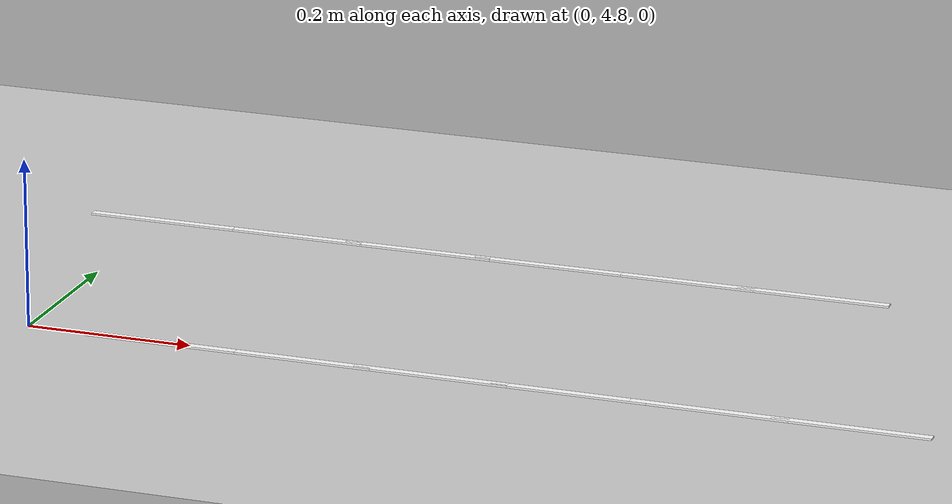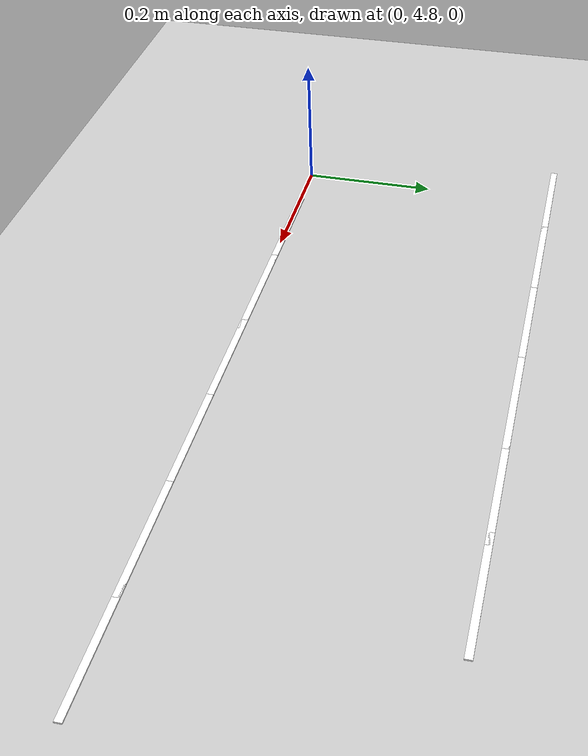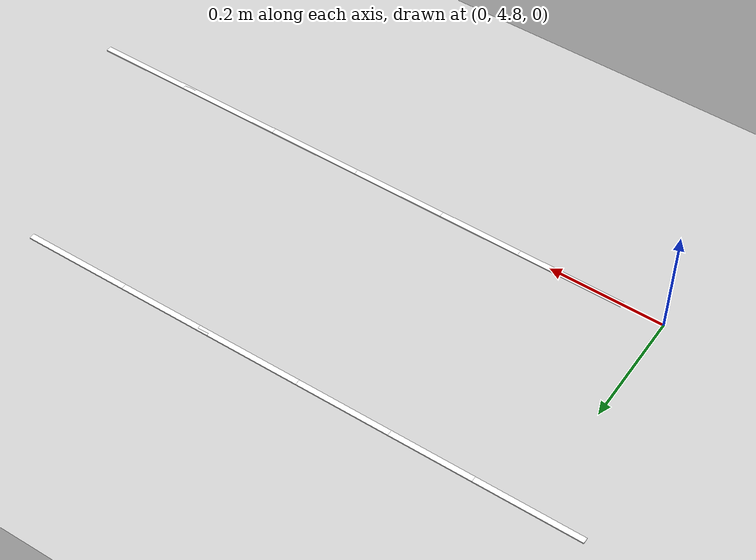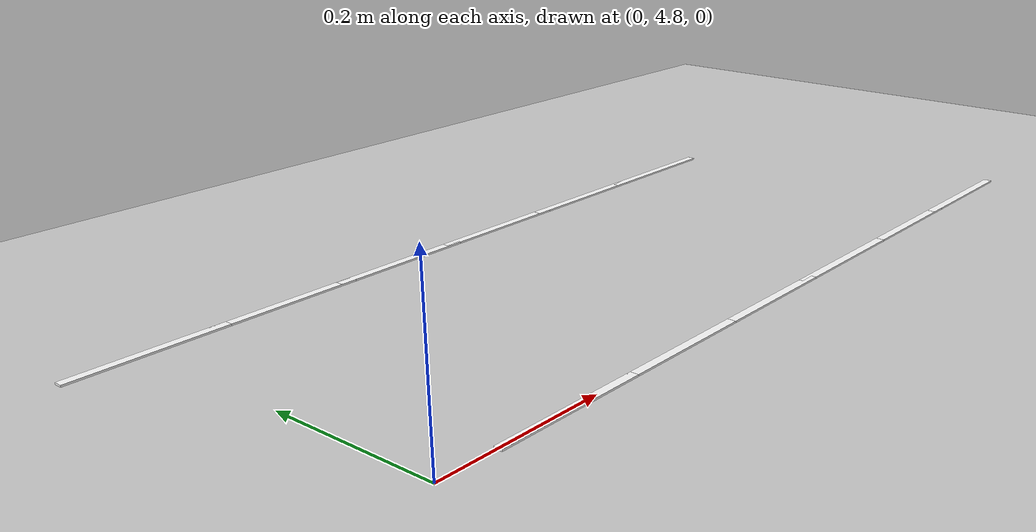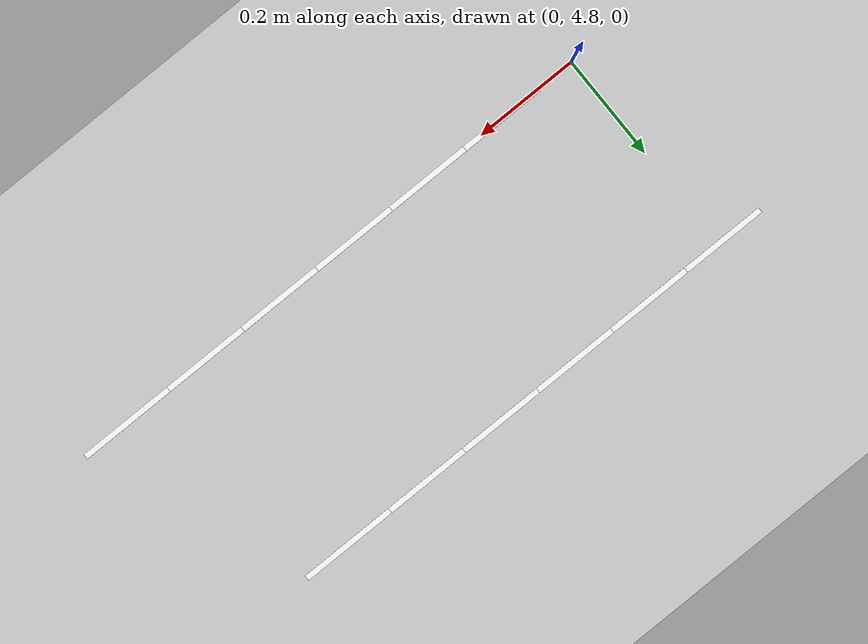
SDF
<sdf version="1.7">
 <world name="default">
  <model name="ground_plane">
   <static>1</static>
   <link name="link">
    <collision name="collision">
     <geometry><plane><normal>0 0 1</normal><size>100 100</size></plane></geometry>
     <surface>
      <contact><collide_bitmask>65535</collide_bitmask></contact>
      <friction><ode><mu>100</mu><mu2>50</mu2></ode></friction>
     </surface>
    </collision>
    <visual name="visual">
     <cast_shadows>0</cast_shadows>
     <geometry><plane><normal>0 0 1</normal><size>100 100</size></plane></geometry>
     <material>
      <script><uri>file://media/materials/scripts/gazebo.material</uri><name>Gazebo/Grey</name></script>
     </material>
    </visual>
   </link>
  </model>
  <model name="lane_line_left_218">
   <static>1</static>
   <link name="link">
    <pose>0 0 -0.004 0 -0 0</pose>
    <visual name="visual">
     <geometry><box><size>0.1833 0.01 0.01</size></box></geometry>
     <material><ambient>1 1 1 1</ambient><diffuse>1 1 1 1</diffuse></material>
    </visual>
    <collision name="collision"><geometry><box><size>0.1833 0.01 0.01</size></box></geometry></collision>
   </link>
   <pose>0.979592 4.8 0 0 -0 3.14159</pose>
  </model>
  <model name="lane_line_left_219">
   <static>1</static>
   <link name="link">
    <pose>0 0 -0.004 0 -0 0</pose>
    <visual name="visual">
     <geometry><box><size>0.1833 0.01 0.01</size></box></geometry>
     <material><ambient>1 1 1 1</ambient><diffuse>1 1 1 1</diffuse></material>
    </visual>
    <collision name="collision"><geometry><box><size>0.1833 0.01 0.01</size></box></geometry></collision>
   </link>
   <pose>0.816327 4.8 0 0 -0 3.14159</pose>
  </model>
  <model name="lane_line_right_219">
   <static>1</static>
   <link name="link">
    <pose>0 0 -0.004 0 -0 0</pose>
    <visual name="visual">
     <geometry><box><size>0.1833 0.01 0.01</size></box></geometry>
     <material><ambient>1 1 1 1</ambient><diffuse>1 1 1 1</diffuse></material>
    </visual>
    <collision name="collision"><geometry><box><size>0.1833 0.01 0.01</size></box></geometry></collision>
   </link>
   <pose>0.816327 5.2 0 0 -0 3.14159</pose>
  </model>
  <model name="lane_line_left_220">
   <static>1</static>
   <link name="link">
    <pose>0 0 -0.004 0 -0 0</pose>
    <visual name="visual">
     <geometry><box><size>0.1833 0.01 0.01</size></box></geometry>
     <material><ambient>1 1 1 1</ambient><diffuse>1 1 1 1</diffuse></material>
    </visual>
    <collision name="collision"><geometry><box><size>0.1833 0.01 0.01</size></box></geometry></collision>
   </link>
   <pose>0.653061 4.8 0 0 -0 3.14159</pose>
  </model>
  <model name="lane_line_right_220">
   <static>1</static>
   <link name="link">
    <pose>0 0 -0.004 0 -0 0</pose>
    <visual name="visual">
     <geometry><box><size>0.1833 0.01 0.01</size></box></geometry>
     <material><ambient>1 1 1 1</ambient><diffuse>1 1 1 1</diffuse></material>
    </visual>
    <collision name="collision"><geometry><box><size>0.1833 0.01 0.01</size></box></geometry></collision>
   </link>
   <pose>0.653061 5.2 0 0 -0 3.14159</pose>
  </model>
  <model name="lane_line_left_221">
   <static>1</static>
   <link name="link">
    <pose>0 0 -0.004 0 -0 0</pose>
    <visual name="visual">
     <geometry><box><size>0.1833 0.01 0.01</size></box></geometry>
     <material><ambient>1 1 1 1</ambient><diffuse>1 1 1 1</diffuse></material>
    </visual>
    <collision name="collision"><geometry><box><size>0.1833 0.01 0.01</size></box></geometry></collision>
   </link>
   <pose>0.489796 4.8 0 0 -0 3.14159</pose>
  </model>
  <model name="lane_line_right_221">
   <static>1</static>
   <link name="link">
    <pose>0 0 -0.004 0 -0 0</pose>
    <visual name="visual">
     <geometry><box><size>0.1833 0.01 0.01</size></box></geometry>
     <material><ambient>1 1 1 1</ambient><diffuse>1 1 1 1</diffuse></material>
    </visual>
    <collision name="collision"><geometry><box><size>0.1833 0.01 0.01</size></box></geometry></collision>
   </link>
   <pose>0.489796 5.2 0 0 -0 3.14159</pose>
  </model>
  <model name="lane_line_left_222">
   <static>1</static>
   <link name="link">
    <pose>0 0 -0.004 0 -0 0</pose>
    <visual name="visual">
     <geometry><box><size>0.1833 0.01 0.01</size></box></geometry>
     <material><ambient>1 1 1 1</ambient><diffuse>1 1 1 1</diffuse></material>
    </visual>
    <collision name="collision"><geometry><box><size>0.1833 0.01 0.01</size></box></geometry></collision>
   </link>
   <pose>0.326531 4.8 0 0 -0 3.14159</pose>
  </model>
  <model name="lane_line_right_222">
   <static>1</static>
   <link name="link">
    <pose>0 0 -0.004 0 -0 0</pose>
    <visual name="visual">
     <geometry><box><size>0.1833 0.01 0.01</size></box></geometry>
     <material><ambient>1 1 1 1</ambient><diffuse>1 1 1 1</diffuse></material>
    </visual>
    <collision name="collision"><geometry><box><size>0.1833 0.01 0.01</size></box></geometry></collision>
   </link>
   <pose>0.326531 5.2 0 0 -0 3.14159</pose>
  </model>
  <model name="lane_line_left_223">
   <static>1</static>
   <link name="link">
    <pose>0 0 -0.004 0 -0 0</pose>
    <visual name="visual">
     <geometry><box><size>0.1833 0.01 0.01</size></box></geometry>
     <material><ambient>1 1 1 1</ambient><diffuse>1 1 1 1</diffuse></material>
    </visual>
    <collision name="collision"><geometry><box><size>0.1833 0.01 0.01</size></box></geometry></collision>
   </link>
   <pose>0.163265 4.8 0 0 -0 3.14159</pose>
  </model>
  <model name="lane_line_right_223">
   <static>1</static>
   <link name="link">
    <pose>0 0 -0.004 0 -0 0</pose>
    <visual name="visual">
     <geometry><box><size>0.1833 0.01 0.01</size></box></geometry>
     <material><ambient>1 1 1 1</ambient><diffuse>1 1 1 1</diffuse></material>
    </visual>
    <collision name="collision"><geometry><box><size>0.1833 0.01 0.01</size></box></geometry></collision>
   </link>
   <pose>0.163265 5.2 0 0 -0 3.14159</pose>
  </model>
  <model name="lane_line_right_224">
   <static>1</static>
   <link name="link">
    <pose>0 0 -0.004 0 -0 0</pose>
    <visual name="visual">
     <geometry><box><size>0.1833 0.01 0.01</size></box></geometry>
     <material><ambient>1 1 1 1</ambient><diffuse>1 1 1 1</diffuse></material>
    </visual>
    <collision name="collision"><geometry><box><size>0.1833 0.01 0.01</size></box></geometry></collision>
   </link>
   <pose>0 5.2 0 0 -0 3.14159</pose>
  </model>
 </world>
</sdf>
